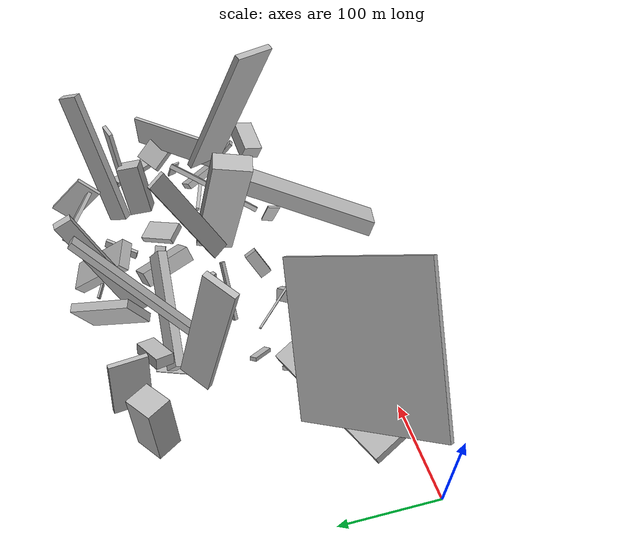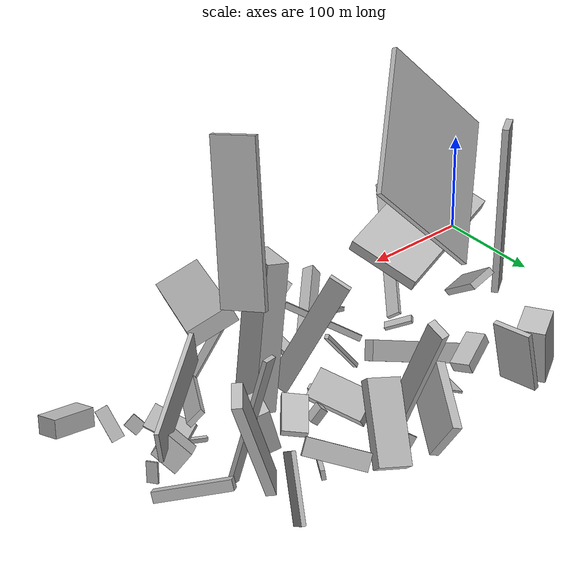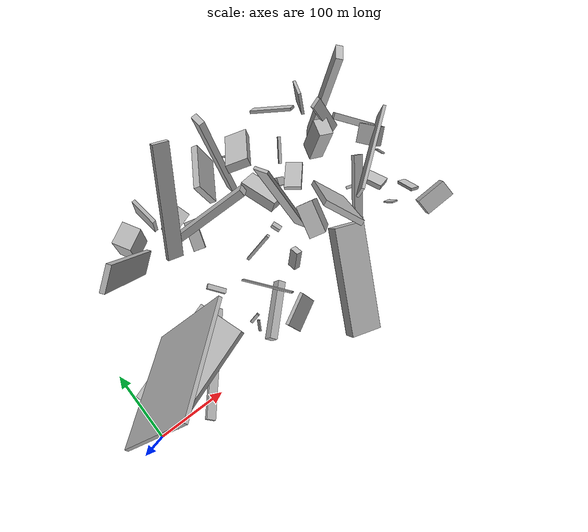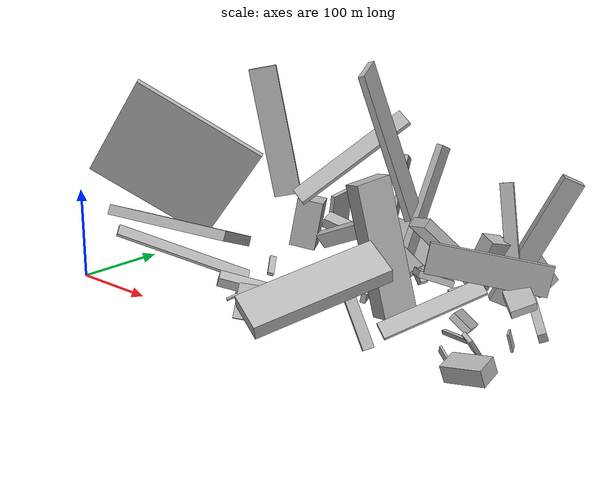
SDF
<sdf version="1.6">
 <world name="default">
  <model name="building_3">
   <static>0</static>
   <pose>420.94607814986523 260.1127815754333 39.8420100999596 1.533527591717731 -0.6435940136169481 1.1607174363100758</pose>
   <link name="link">
    <gravity>0</gravity>
    <pose>0 0 2.0 0 0 0</pose>
    <collision name="collision"><geometry><box><size>28 61 4</size></box></geometry></collision>
    <visual name="visual">
     <cast_shadows>0</cast_shadows>
     <geometry><box><size>28 61 4</size></box></geometry>
     <material>
      <script>
       <uri>model://HANNAS_wall/materials/scripts</uri>
       <uri>model://HANNAS_wall/materials/textures</uri>
       <name>vrc/HANNAS_wall</name>
      </script>
     </material>
    </visual>
   </link>
  </model>
  <model name="building_6">
   <static>0</static>
   <pose>425.18389464368346 209.73645368273364 79.07927625135693 -0.7447193316424433 -1.3110439471025137 2.6268984074315966</pose>
   <link name="link">
    <gravity>0</gravity>
    <pose>0 0 2.0 0 0 0</pose>
    <collision name="collision"><geometry><box><size>124 14 4</size></box></geometry></collision>
    <visual name="visual">
     <cast_shadows>0</cast_shadows>
     <geometry><box><size>124 14 4</size></box></geometry>
     <material>
      <script>
       <uri>model://HANNAS_wall/materials/scripts</uri>
       <uri>model://HANNAS_wall/materials/textures</uri>
       <name>vrc/HANNAS_wall</name>
      </script>
     </material>
    </visual>
   </link>
  </model>
  <model name="building_9">
   <static>0</static>
   <pose>445.43260659078487 115.34296753509653 21.501391600132397 -0.3782642870587516 -0.850306131800718 0.7064850342172253</pose>
   <link name="link">
    <gravity>0</gravity>
    <pose>0 0 11.0 0 0 0</pose>
    <collision name="collision"><geometry><box><size>7 40 22</size></box></geometry></collision>
    <visual name="visual">
     <cast_shadows>0</cast_shadows>
     <geometry><box><size>7 40 22</size></box></geometry>
     <material>
      <script>
       <uri>model://HANNAS_wall/materials/scripts</uri>
       <uri>model://HANNAS_wall/materials/textures</uri>
       <name>vrc/HANNAS_wall</name>
      </script>
     </material>
    </visual>
   </link>
  </model>
  <model name="building_10">
   <static>0</static>
   <pose>331.610137652745 93.44440369719452 77.77424442970286 0.8828996320521553 -1.3547485997910766 -2.6844283307773633</pose>
   <link name="link">
    <gravity>0</gravity>
    <pose>0 0 20.0 0 0 0</pose>
    <collision name="collision"><geometry><box><size>138 20 40</size></box></geometry></collision>
    <visual name="visual">
     <cast_shadows>0</cast_shadows>
     <geometry><box><size>138 20 40</size></box></geometry>
     <material>
      <script>
       <uri>model://HANNAS_wall/materials/scripts</uri>
       <uri>model://HANNAS_wall/materials/textures</uri>
       <name>vrc/HANNAS_wall</name>
      </script>
     </material>
    </visual>
   </link>
  </model>
  <model name="building_12">
   <static>0</static>
   <pose>165.7694307742955 78.79263799654018 60.210648897042454 1.3180628031530128 1.1829132116903107 -1.4675095553041468</pose>
   <link name="link">
    <gravity>0</gravity>
    <pose>0 0 70.5 0 0 0</pose>
    <collision name="collision"><geometry><box><size>11 69 141</size></box></geometry></collision>
    <visual name="visual">
     <cast_shadows>0</cast_shadows>
     <geometry><box><size>11 69 141</size></box></geometry>
     <material>
      <script>
       <uri>model://HANNAS_wall/materials/scripts</uri>
       <uri>model://HANNAS_wall/materials/textures</uri>
       <name>vrc/HANNAS_wall</name>
      </script>
     </material>
    </visual>
   </link>
  </model>
  <model name="building_15">
   <static>0</static>
   <pose>312.7719347964239 160.5705018023219 83.46617315777029 0.2651243395751293 -1.1004184875255292 1.7688924628607536</pose>
   <link name="link">
    <gravity>0</gravity>
    <pose>0 0 10.0 0 0 0</pose>
    <collision name="collision"><geometry><box><size>150 4 20</size></box></geometry></collision>
    <visual name="visual">
     <cast_shadows>0</cast_shadows>
     <geometry><box><size>150 4 20</size></box></geometry>
     <material>
      <script>
       <uri>model://HANNAS_wall/materials/scripts</uri>
       <uri>model://HANNAS_wall/materials/textures</uri>
       <name>vrc/HANNAS_wall</name>
      </script>
     </material>
    </visual>
   </link>
  </model>
  <model name="building_16">
   <static>0</static>
   <pose>424.6844603839976 117.50135674631075 10.533130628331943 3.0248042556646952 -0.09545040568449047 1.2489901597829198</pose>
   <link name="link">
    <gravity>0</gravity>
    <pose>0 0 2.0 0 0 0</pose>
    <collision name="collision"><geometry><box><size>4 40 4</size></box></geometry></collision>
    <visual name="visual">
     <cast_shadows>0</cast_shadows>
     <geometry><box><size>4 40 4</size></box></geometry>
     <material>
      <script>
       <uri>model://HANNAS_wall/materials/scripts</uri>
       <uri>model://HANNAS_wall/materials/textures</uri>
       <name>vrc/HANNAS_wall</name>
      </script>
     </material>
    </visual>
   </link>
  </model>
  <model name="building_22">
   <static>0</static>
   <pose>137.21996340635576 100.89135735448768 96.95096128494049 0.9494818620397083 0.4326575226694881 -1.1258939234461234</pose>
   <link name="link">
    <gravity>0</gravity>
    <pose>0 0 75.0 0 0 0</pose>
    <collision name="collision"><geometry><box><size>5 150 150</size></box></geometry></collision>
    <visual name="visual">
     <cast_shadows>0</cast_shadows>
     <geometry><box><size>5 150 150</size></box></geometry>
     <material>
      <script>
       <uri>model://HANNAS_wall/materials/scripts</uri>
       <uri>model://HANNAS_wall/materials/textures</uri>
       <name>vrc/HANNAS_wall</name>
      </script>
     </material>
    </visual>
   </link>
  </model>
  <model name="building_24">
   <static>0</static>
   <pose>199.9052272344958 227.26171909071246 126.9411487804041 0.6526115121560769 -0.6063951936353014 0.9646820355856539</pose>
   <link name="link">
    <gravity>0</gravity>
    <pose>0 0 3.0 0 0 0</pose>
    <collision name="collision"><geometry><box><size>150 21 6</size></box></geometry></collision>
    <visual name="visual">
     <cast_shadows>0</cast_shadows>
     <geometry><box><size>150 21 6</size></box></geometry>
     <material>
      <script>
       <uri>model://HANNAS_wall/materials/scripts</uri>
       <uri>model://HANNAS_wall/materials/textures</uri>
       <name>vrc/HANNAS_wall</name>
      </script>
     </material>
    </visual>
   </link>
  </model>
  <model name="building_28">
   <static>0</static>
   <pose>301.53153260046776 181.86867619258538 29.735204999669595 0.18532840897806316 -0.662983318759284 -2.916855498178971</pose>
   <link name="link">
    <gravity>0</gravity>
    <pose>0 0 8.0 0 0 0</pose>
    <collision name="collision"><geometry><box><size>28 54 16</size></box></geometry></collision>
    <visual name="visual">
     <cast_shadows>0</cast_shadows>
     <geometry><box><size>28 54 16</size></box></geometry>
     <material>
      <script>
       <uri>model://HANNAS_wall/materials/scripts</uri>
       <uri>model://HANNAS_wall/materials/textures</uri>
       <name>vrc/HANNAS_wall</name>
      </script>
     </material>
    </visual>
   </link>
  </model>
  <model name="building_29">
   <static>0</static>
   <pose>338.2036114047082 181.82612592009673 24.830610489536795 0.7201947805005466 0.07658988869370915 -1.8967467343626847</pose>
   <link name="link">
    <gravity>0</gravity>
    <pose>0 0 7.5 0 0 0</pose>
    <collision name="collision"><geometry><box><size>11 8 15</size></box></geometry></collision>
    <visual name="visual">
     <cast_shadows>0</cast_shadows>
     <geometry><box><size>11 8 15</size></box></geometry>
     <material>
      <script>
       <uri>model://HANNAS_wall/materials/scripts</uri>
       <uri>model://HANNAS_wall/materials/textures</uri>
       <name>vrc/HANNAS_wall</name>
      </script>
     </material>
    </visual>
   </link>
  </model>
  <model name="building_31">
   <static>0</static>
   <pose>334.87711655066107 14.788009470166376 68.68643270497077 2.851370163803721 -0.42218061696903864 2.8121413530324255</pose>
   <link name="link">
    <gravity>0</gravity>
    <pose>0 0 8.0 0 0 0</pose>
    <collision name="collision"><geometry><box><size>44 143 16</size></box></geometry></collision>
    <visual name="visual">
     <cast_shadows>0</cast_shadows>
     <geometry><box><size>44 143 16</size></box></geometry>
     <material>
      <script>
       <uri>model://HANNAS_wall/materials/scripts</uri>
       <uri>model://HANNAS_wall/materials/textures</uri>
       <name>vrc/HANNAS_wall</name>
      </script>
     </material>
    </visual>
   </link>
  </model>
  <model name="building_33">
   <static>0</static>
   <pose>362.4078529921752 170.2658046078094 37.236047887932166 1.7301954655400793 -0.3510187998671166 -2.279040043163953</pose>
   <link name="link">
    <gravity>0</gravity>
    <pose>0 0 11.5 0 0 0</pose>
    <collision name="collision"><geometry><box><size>39 7 23</size></box></geometry></collision>
    <visual name="visual">
     <cast_shadows>0</cast_shadows>
     <geometry><box><size>39 7 23</size></box></geometry>
     <material>
      <script>
       <uri>model://HANNAS_wall/materials/scripts</uri>
       <uri>model://HANNAS_wall/materials/textures</uri>
       <name>vrc/HANNAS_wall</name>
      </script>
     </material>
    </visual>
   </link>
  </model>
  <model name="building_45">
   <static>0</static>
   <pose>311.39756330672935 243.1435573272389 41.89936518291971 0.27945418709858466 -0.7817726247774739 -2.099672538147056</pose>
   <link name="link">
    <gravity>0</gravity>
    <pose>0 0 6.0 0 0 0</pose>
    <collision name="collision"><geometry><box><size>76 31 12</size></box></geometry></collision>
    <visual name="visual">
     <cast_shadows>0</cast_shadows>
     <geometry><box><size>76 31 12</size></box></geometry>
     <material>
      <script>
       <uri>model://HANNAS_wall/materials/scripts</uri>
       <uri>model://HANNAS_wall/materials/textures</uri>
       <name>vrc/HANNAS_wall</name>
      </script>
     </material>
    </visual>
   </link>
  </model>
  <model name="building_46">
   <static>0</static>
   <pose>472.34040938059667 39.89302498321749 16.53469781019052 1.3953370975488293 -0.25349371672211796 1.665510111453216</pose>
   <link name="link">
    <gravity>0</gravity>
    <pose>0 0 21.0 0 0 0</pose>
    <collision name="collision"><geometry><box><size>23 17 42</size></box></geometry></collision>
    <visual name="visual">
     <cast_shadows>0</cast_shadows>
     <geometry><box><size>23 17 42</size></box></geometry>
     <material>
      <script>
       <uri>model://HANNAS_wall/materials/scripts</uri>
       <uri>model://HANNAS_wall/materials/textures</uri>
       <name>vrc/HANNAS_wall</name>
      </script>
     </material>
    </visual>
   </link>
  </model>
  <model name="building_49">
   <static>0</static>
   <pose>407.3927169293918 102.85648008044618 37.097169434354186 2.685153396075238 -0.704578156372444 2.856440209679278</pose>
   <link name="link">
    <gravity>0</gravity>
    <pose>0 0 2.5 0 0 0</pose>
    <collision name="collision"><geometry><box><size>17 109 5</size></box></geometry></collision>
    <visual name="visual">
     <cast_shadows>0</cast_shadows>
     <geometry><box><size>17 109 5</size></box></geometry>
     <material>
      <script>
       <uri>model://HANNAS_wall/materials/scripts</uri>
       <uri>model://HANNAS_wall/materials/textures</uri>
       <name>vrc/HANNAS_wall</name>
      </script>
     </material>
    </visual>
   </link>
  </model>
  <model name="building_57">
   <static>0</static>
   <pose>297.3421806104428 131.80509754937646 10.710543558785393 1.4596949716810643 -0.23183894567077598 -2.7416501825292756</pose>
   <link name="link">
    <gravity>0</gravity>
    <pose>0 0 6.5 0 0 0</pose>
    <collision name="collision"><geometry><box><size>6 11 13</size></box></geometry></collision>
    <visual name="visual">
     <cast_shadows>0</cast_shadows>
     <geometry><box><size>6 11 13</size></box></geometry>
     <material>
      <script>
       <uri>model://HANNAS_wall/materials/scripts</uri>
       <uri>model://HANNAS_wall/materials/textures</uri>
       <name>vrc/HANNAS_wall</name>
      </script>
     </material>
    </visual>
   </link>
  </model>
  <model name="building_60">
   <static>0</static>
   <pose>471.3736044733044 85.56573062009826 15.087416893283951 0.6635283891658516 0.36113583488974227 -0.3124146970888122</pose>
   <link name="link">
    <gravity>0</gravity>
    <pose>0 0 15.0 0 0 0</pose>
    <collision name="collision"><geometry><box><size>12 4 30</size></box></geometry></collision>
    <visual name="visual">
     <cast_shadows>0</cast_shadows>
     <geometry><box><size>12 4 30</size></box></geometry>
     <material>
      <script>
       <uri>model://HANNAS_wall/materials/scripts</uri>
       <uri>model://HANNAS_wall/materials/textures</uri>
       <name>vrc/HANNAS_wall</name>
      </script>
     </material>
    </visual>
   </link>
  </model>
  <model name="building_61">
   <static>0</static>
   <pose>197.72634008904322 54.88276212324006 11.811310811559455 0.17302855116467286 -0.3605078757301616 0.20998635471627788</pose>
   <link name="link">
    <gravity>0</gravity>
    <pose>0 0 2.0 0 0 0</pose>
    <collision name="collision"><geometry><box><size>15 4 4</size></box></geometry></collision>
    <visual name="visual">
     <cast_shadows>0</cast_shadows>
     <geometry><box><size>15 4 4</size></box></geometry>
     <material>
      <script>
       <uri>model://HANNAS_wall/materials/scripts</uri>
       <uri>model://HANNAS_wall/materials/textures</uri>
       <name>vrc/HANNAS_wall</name>
      </script>
     </material>
    </visual>
   </link>
  </model>
  <model name="building_65">
   <static>0</static>
   <pose>363.66978561794576 124.71787233094415 119.49635064414747 0.18732641418825172 -0.2750737908505673 0.41745687337188275</pose>
   <link name="link">
    <gravity>0</gravity>
    <pose>0 0 75.0 0 0 0</pose>
    <collision name="collision"><geometry><box><size>6 42 150</size></box></geometry></collision>
    <visual name="visual">
     <cast_shadows>0</cast_shadows>
     <geometry><box><size>6 42 150</size></box></geometry>
     <material>
      <script>
       <uri>model://HANNAS_wall/materials/scripts</uri>
       <uri>model://HANNAS_wall/materials/textures</uri>
       <name>vrc/HANNAS_wall</name>
      </script>
     </material>
    </visual>
   </link>
  </model>
  <model name="building_66">
   <static>0</static>
   <pose>130.99200724072716 223.94469082857685 35.920538909771686 1.566359889652618 -0.186672583721242 -2.596067929572076</pose>
   <link name="link">
    <gravity>0</gravity>
    <pose>0 0 13.0 0 0 0</pose>
    <collision name="collision"><geometry><box><size>31 59 26</size></box></geometry></collision>
    <visual name="visual">
     <cast_shadows>0</cast_shadows>
     <geometry><box><size>31 59 26</size></box></geometry>
     <material>
      <script>
       <uri>model://HANNAS_wall/materials/scripts</uri>
       <uri>model://HANNAS_wall/materials/textures</uri>
       <name>vrc/HANNAS_wall</name>
      </script>
     </material>
    </visual>
   </link>
  </model>
  <model name="building_68">
   <static>0</static>
   <pose>132.36002529619157 192.21474037690226 79.83747048862682 -0.18618379834541562 -0.0009575086480945377 2.2409310775673466</pose>
   <link name="link">
    <gravity>0</gravity>
    <pose>0 0 75.0 0 0 0</pose>
    <collision name="collision"><geometry><box><size>6 31 150</size></box></geometry></collision>
    <visual name="visual">
     <cast_shadows>0</cast_shadows>
     <geometry><box><size>6 31 150</size></box></geometry>
     <material>
      <script>
       <uri>model://HANNAS_wall/materials/scripts</uri>
       <uri>model://HANNAS_wall/materials/textures</uri>
       <name>vrc/HANNAS_wall</name>
      </script>
     </material>
    </visual>
   </link>
  </model>
  <model name="building_70">
   <static>0</static>
   <pose>271.2309128674822 35.56702903592868 21.670190131776092 -1.431889999632938 -1.0156339978620255 1.9551152106547185</pose>
   <link name="link">
    <gravity>0</gravity>
    <pose>0 0 23.0 0 0 0</pose>
    <collision name="collision"><geometry><box><size>36 5 46</size></box></geometry></collision>
    <visual name="visual">
     <cast_shadows>0</cast_shadows>
     <geometry><box><size>36 5 46</size></box></geometry>
     <material>
      <script>
       <uri>model://HANNAS_wall/materials/scripts</uri>
       <uri>model://HANNAS_wall/materials/textures</uri>
       <name>vrc/HANNAS_wall</name>
      </script>
     </material>
    </visual>
   </link>
  </model>
  <model name="building_72">
   <static>0</static>
   <pose>282.1425946786053 256.8502933130008 74.10103031795215 0.20057346445343346 -1.137254127617539 1.4277439448821312</pose>
   <link name="link">
    <gravity>0</gravity>
    <pose>0 0 9.0 0 0 0</pose>
    <collision name="collision"><geometry><box><size>150 8 18</size></box></geometry></collision>
    <visual name="visual">
     <cast_shadows>0</cast_shadows>
     <geometry><box><size>150 8 18</size></box></geometry>
     <material>
      <script>
       <uri>model://HANNAS_wall/materials/scripts</uri>
       <uri>model://HANNAS_wall/materials/textures</uri>
       <name>vrc/HANNAS_wall</name>
      </script>
     </material>
    </visual>
   </link>
  </model>
  <model name="building_75">
   <static>0</static>
   <pose>178.11537149557103 117.10499241894999 21.31158583333841 0.33451323350801965 -0.4229480524214739 2.2319914269267005</pose>
   <link name="link">
    <gravity>0</gravity>
    <pose>0 0 2.0 0 0 0</pose>
    <collision name="collision"><geometry><box><size>27 7 4</size></box></geometry></collision>
    <visual name="visual">
     <cast_shadows>0</cast_shadows>
     <geometry><box><size>27 7 4</size></box></geometry>
     <material>
      <script>
       <uri>model://HANNAS_wall/materials/scripts</uri>
       <uri>model://HANNAS_wall/materials/textures</uri>
       <name>vrc/HANNAS_wall</name>
      </script>
     </material>
    </visual>
   </link>
  </model>
  <model name="building_80">
   <static>0</static>
   <pose>372.6041499995274 236.8039824002693 15.55378829828282 1.7659830259738687 0.13308532741557655 -0.5637382911734511</pose>
   <link name="link">
    <gravity>0</gravity>
    <pose>0 0 18.5 0 0 0</pose>
    <collision name="collision"><geometry><box><size>4 9 37</size></box></geometry></collision>
    <visual name="visual">
     <cast_shadows>0</cast_shadows>
     <geometry><box><size>4 9 37</size></box></geometry>
     <material>
      <script>
       <uri>model://HANNAS_wall/materials/scripts</uri>
       <uri>model://HANNAS_wall/materials/textures</uri>
       <name>vrc/HANNAS_wall</name>
      </script>
     </material>
    </visual>
   </link>
  </model>
  <model name="building_82">
   <static>0</static>
   <pose>289.81705696104086 81.17236666611838 32.31120347654371 -2.331124700514804 -0.8193681155731473 0.7890446384309755</pose>
   <link name="link">
    <gravity>0</gravity>
    <pose>0 0 6.5 0 0 0</pose>
    <collision name="collision"><geometry><box><size>29 9 13</size></box></geometry></collision>
    <visual name="visual">
     <cast_shadows>0</cast_shadows>
     <geometry><box><size>29 9 13</size></box></geometry>
     <material>
      <script>
       <uri>model://HANNAS_wall/materials/scripts</uri>
       <uri>model://HANNAS_wall/materials/textures</uri>
       <name>vrc/HANNAS_wall</name>
      </script>
     </material>
    </visual>
   </link>
  </model>
  <model name="building_83">
   <static>0</static>
   <pose>395.3496469631721 189.48430048133156 34.098031935026576 0.2995405774979433 0.2557105146407037 1.2889898218066649</pose>
   <link name="link">
    <gravity>0</gravity>
    <pose>0 0 27.5 0 0 0</pose>
    <collision name="collision"><geometry><box><size>24 19 55</size></box></geometry></collision>
    <visual name="visual">
     <cast_shadows>0</cast_shadows>
     <geometry><box><size>24 19 55</size></box></geometry>
     <material>
      <script>
       <uri>model://HANNAS_wall/materials/scripts</uri>
       <uri>model://HANNAS_wall/materials/textures</uri>
       <name>vrc/HANNAS_wall</name>
      </script>
     </material>
    </visual>
   </link>
  </model>
  <model name="building_84">
   <static>0</static>
   <pose>124.23729328542301 40.18029710771225 45.108160155485905 2.6370424497698037 0.5878555015239595 -0.9474340844068958</pose>
   <link name="link">
    <gravity>0</gravity>
    <pose>0 0 2.0 0 0 0</pose>
    <collision name="collision"><geometry><box><size>13 150 4</size></box></geometry></collision>
    <visual name="visual">
     <cast_shadows>0</cast_shadows>
     <geometry><box><size>13 150 4</size></box></geometry>
     <material>
      <script>
       <uri>model://HANNAS_wall/materials/scripts</uri>
       <uri>model://HANNAS_wall/materials/textures</uri>
       <name>vrc/HANNAS_wall</name>
      </script>
     </material>
    </visual>
   </link>
  </model>
  <model name="building_86">
   <static>0</static>
   <pose>256.41580626919165 129.42878547802567 32.705676288039726 1.9176785914227064 -0.915418228511623 0.10843186354367944</pose>
   <link name="link">
    <gravity>0</gravity>
    <pose>0 0 2.0 0 0 0</pose>
    <collision name="collision"><geometry><box><size>63 4 4</size></box></geometry></collision>
    <visual name="visual">
     <cast_shadows>0</cast_shadows>
     <geometry><box><size>63 4 4</size></box></geometry>
     <material>
      <script>
       <uri>model://HANNAS_wall/materials/scripts</uri>
       <uri>model://HANNAS_wall/materials/textures</uri>
       <name>vrc/HANNAS_wall</name>
      </script>
     </material>
    </visual>
   </link>
  </model>
  <model name="building_87">
   <static>0</static>
   <pose>231.45055985048796 193.11529788467107 54.018008099867714 -1.1097898913725643 -0.4109266050710443 -0.07764631314791703</pose>
   <link name="link">
    <gravity>0</gravity>
    <pose>0 0 5.0 0 0 0</pose>
    <collision name="collision"><geometry><box><size>117 18 10</size></box></geometry></collision>
    <visual name="visual">
     <cast_shadows>0</cast_shadows>
     <geometry><box><size>117 18 10</size></box></geometry>
     <material>
      <script>
       <uri>model://HANNAS_wall/materials/scripts</uri>
       <uri>model://HANNAS_wall/materials/textures</uri>
       <name>vrc/HANNAS_wall</name>
      </script>
     </material>
    </visual>
   </link>
  </model>
  <model name="building_88">
   <static>0</static>
   <pose>445.64718784558613 138.7392388108753 76.29917300217241 1.8608739351352706 -1.3821792025103337 0.36155458472620566</pose>
   <link name="link">
    <gravity>0</gravity>
    <pose>0 0 2.0 0 0 0</pose>
    <collision name="collision"><geometry><box><size>32 119 4</size></box></geometry></collision>
    <visual name="visual">
     <cast_shadows>0</cast_shadows>
     <geometry><box><size>32 119 4</size></box></geometry>
     <material>
      <script>
       <uri>model://HANNAS_wall/materials/scripts</uri>
       <uri>model://HANNAS_wall/materials/textures</uri>
       <name>vrc/HANNAS_wall</name>
      </script>
     </material>
    </visual>
   </link>
  </model>
  <model name="building_90">
   <static>0</static>
   <pose>252.99321115076162 252.0266885678867 35.94722966042998 0.8636924829070604 -1.0375570867826212 1.8443578243213352</pose>
   <link name="link">
    <gravity>0</gravity>
    <pose>0 0 4.5 0 0 0</pose>
    <collision name="collision"><geometry><box><size>43 67 9</size></box></geometry></collision>
    <visual name="visual">
     <cast_shadows>0</cast_shadows>
     <geometry><box><size>43 67 9</size></box></geometry>
     <material>
      <script>
       <uri>model://HANNAS_wall/materials/scripts</uri>
       <uri>model://HANNAS_wall/materials/textures</uri>
       <name>vrc/HANNAS_wall</name>
      </script>
     </material>
    </visual>
   </link>
  </model>
  <model name="building_95">
   <static>0</static>
   <pose>436.509852375504 232.91287388443783 80.06751295229485 1.919146748911374 -1.1008033739225318 0.49053631154265354</pose>
   <link name="link">
    <gravity>0</gravity>
    <pose>0 0 4.5 0 0 0</pose>
    <collision name="collision"><geometry><box><size>150 23 9</size></box></geometry></collision>
    <visual name="visual">
     <cast_shadows>0</cast_shadows>
     <geometry><box><size>150 23 9</size></box></geometry>
     <material>
      <script>
       <uri>model://HANNAS_wall/materials/scripts</uri>
       <uri>model://HANNAS_wall/materials/textures</uri>
       <name>vrc/HANNAS_wall</name>
      </script>
     </material>
    </visual>
   </link>
  </model>
  <model name="building_97">
   <static>0</static>
   <pose>359.63927050871087 279.56763921110223 46.77027334105933 -1.188130365167432 0.5291717461182374 -2.0455427015018195</pose>
   <link name="link">
    <gravity>0</gravity>
    <pose>0 0 28.5 0 0 0</pose>
    <collision name="collision"><geometry><box><size>4 16 57</size></box></geometry></collision>
    <visual name="visual">
     <cast_shadows>0</cast_shadows>
     <geometry><box><size>4 16 57</size></box></geometry>
     <material>
      <script>
       <uri>model://HANNAS_wall/materials/scripts</uri>
       <uri>model://HANNAS_wall/materials/textures</uri>
       <name>vrc/HANNAS_wall</name>
      </script>
     </material>
    </visual>
   </link>
  </model>
  <model name="building_102">
   <static>0</static>
   <pose>187.26533650825803 219.26444783756222 43.036558961367014 -0.22229710289167287 -0.33690445267146635 -2.751974086872939</pose>
   <link name="link">
    <gravity>0</gravity>
    <pose>0 0 5.5 0 0 0</pose>
    <collision name="collision"><geometry><box><size>36 19 11</size></box></geometry></collision>
    <visual name="visual">
     <cast_shadows>0</cast_shadows>
     <geometry><box><size>36 19 11</size></box></geometry>
     <material>
      <script>
       <uri>model://HANNAS_wall/materials/scripts</uri>
       <uri>model://HANNAS_wall/materials/textures</uri>
       <name>vrc/HANNAS_wall</name>
      </script>
     </material>
    </visual>
   </link>
  </model>
  <model name="building_105">
   <static>0</static>
   <pose>196.75679269512815 42.797230354951665 11.612876419053395 0.4936256175249445 -0.8373137915924715 -0.8885951685100285</pose>
   <link name="link">
    <gravity>0</gravity>
    <pose>0 0 1.0 0 0 0</pose>
    <collision name="collision"><geometry><box><size>4 16 2</size></box></geometry></collision>
    <visual name="visual">
     <cast_shadows>0</cast_shadows>
     <geometry><box><size>4 16 2</size></box></geometry>
     <material>
      <script>
       <uri>model://HANNAS_wall/materials/scripts</uri>
       <uri>model://HANNAS_wall/materials/textures</uri>
       <name>vrc/HANNAS_wall</name>
      </script>
     </material>
    </visual>
   </link>
  </model>
  <model name="building_111">
   <static>0</static>
   <pose>353.34612338935494 59.89397369661388 34.00901118220031 -1.6760825942004494 -0.9786570489104418 2.959313223524505</pose>
   <link name="link">
    <gravity>0</gravity>
    <pose>0 0 6.5 0 0 0</pose>
    <collision name="collision"><geometry><box><size>77 2 13</size></box></geometry></collision>
    <visual name="visual">
     <cast_shadows>0</cast_shadows>
     <geometry><box><size>77 2 13</size></box></geometry>
     <material>
      <script>
       <uri>model://HANNAS_wall/materials/scripts</uri>
       <uri>model://HANNAS_wall/materials/textures</uri>
       <name>vrc/HANNAS_wall</name>
      </script>
     </material>
    </visual>
   </link>
  </model>
  <model name="building_113">
   <static>0</static>
   <pose>206.02570784016342 192.8465202205446 13.463388485817426 -2.9000612379230253 1.1654944595505161 -0.07229982813863564</pose>
   <link name="link">
    <gravity>0</gravity>
    <pose>0 0 9.5 0 0 0</pose>
    <collision name="collision"><geometry><box><size>2 42 19</size></box></geometry></collision>
    <visual name="visual">
     <cast_shadows>0</cast_shadows>
     <geometry><box><size>2 42 19</size></box></geometry>
     <material>
      <script>
       <uri>model://HANNAS_wall/materials/scripts</uri>
       <uri>model://HANNAS_wall/materials/textures</uri>
       <name>vrc/HANNAS_wall</name>
      </script>
     </material>
    </visual>
   </link>
  </model>
  <model name="building_115">
   <static>0</static>
   <pose>470.99747146341434 189.88950295047078 16.38538943541639 0.3231593126619722 0.2763814409742165 -0.8233935578064939</pose>
   <link name="link">
    <gravity>0</gravity>
    <pose>0 0 5.0 0 0 0</pose>
    <collision name="collision"><geometry><box><size>70 9 10</size></box></geometry></collision>
    <visual name="visual">
     <cast_shadows>0</cast_shadows>
     <geometry><box><size>70 9 10</size></box></geometry>
     <material>
      <script>
       <uri>model://HANNAS_wall/materials/scripts</uri>
       <uri>model://HANNAS_wall/materials/textures</uri>
       <name>vrc/HANNAS_wall</name>
      </script>
     </material>
    </visual>
   </link>
  </model>
  <model name="building_117">
   <static>0</static>
   <pose>463.38793058831806 168.9174263993691 36.90412565881354 -0.5590846717755302 -0.8306439549406454 2.767828663060191</pose>
   <link name="link">
    <gravity>0</gravity>
    <pose>0 0 13.0 0 0 0</pose>
    <collision name="collision"><geometry><box><size>22 26 26</size></box></geometry></collision>
    <visual name="visual">
     <cast_shadows>0</cast_shadows>
     <geometry><box><size>22 26 26</size></box></geometry>
     <material>
      <script>
       <uri>model://HANNAS_wall/materials/scripts</uri>
       <uri>model://HANNAS_wall/materials/textures</uri>
       <name>vrc/HANNAS_wall</name>
      </script>
     </material>
    </visual>
   </link>
  </model>
  <model name="building_118">
   <static>0</static>
   <pose>475.3502466850432 137.41021821064936 11.699002128420378 2.586317876598339 -1.2947643307015864 -2.16710324008337</pose>
   <link name="link">
    <gravity>0</gravity>
    <pose>0 0 1.0 0 0 0</pose>
    <collision name="collision"><geometry><box><size>19 11 2</size></box></geometry></collision>
    <visual name="visual">
     <cast_shadows>0</cast_shadows>
     <geometry><box><size>19 11 2</size></box></geometry>
     <material>
      <script>
       <uri>model://HANNAS_wall/materials/scripts</uri>
       <uri>model://HANNAS_wall/materials/textures</uri>
       <name>vrc/HANNAS_wall</name>
      </script>
     </material>
    </visual>
   </link>
  </model>
  <model name="building_121">
   <static>0</static>
   <pose>235.8118572245622 78.25311534205558 29.569339506284713 -1.302850198657156 -0.3828095835753107 -0.8925121988496442</pose>
   <link name="link">
    <gravity>0</gravity>
    <pose>0 0 1.0 0 0 0</pose>
    <collision name="collision"><geometry><box><size>75 6 2</size></box></geometry></collision>
    <visual name="visual">
     <cast_shadows>0</cast_shadows>
     <geometry><box><size>75 6 2</size></box></geometry>
     <material>
      <script>
       <uri>model://HANNAS_wall/materials/scripts</uri>
       <uri>model://HANNAS_wall/materials/textures</uri>
       <name>vrc/HANNAS_wall</name>
      </script>
     </material>
    </visual>
   </link>
  </model>
  <model name="building_123">
   <static>0</static>
   <pose>295.1938930242625 258.1169403584535 17.310984519942927 0.9882034129253735 -0.2112914260845739 1.128218607116353</pose>
   <link name="link">
    <gravity>0</gravity>
    <pose>0 0 8.0 0 0 0</pose>
    <collision name="collision"><geometry><box><size>2 24 16</size></box></geometry></collision>
    <visual name="visual">
     <cast_shadows>0</cast_shadows>
     <geometry><box><size>2 24 16</size></box></geometry>
     <material>
      <script>
       <uri>model://HANNAS_wall/materials/scripts</uri>
       <uri>model://HANNAS_wall/materials/textures</uri>
       <name>vrc/HANNAS_wall</name>
      </script>
     </material>
    </visual>
   </link>
  </model>
  <model name="building_127">
   <static>0</static>
   <pose>159.28560095465537 266.95491891812725 48.93971573753435 1.887908851932905 -1.3976237632545858 -0.17343791130126798</pose>
   <link name="link">
    <gravity>0</gravity>
    <pose>0 0 19.0 0 0 0</pose>
    <collision name="collision"><geometry><box><size>60 5 38</size></box></geometry></collision>
    <visual name="visual">
     <cast_shadows>0</cast_shadows>
     <geometry><box><size>60 5 38</size></box></geometry>
     <material>
      <script>
       <uri>model://HANNAS_wall/materials/scripts</uri>
       <uri>model://HANNAS_wall/materials/textures</uri>
       <name>vrc/HANNAS_wall</name>
      </script>
     </material>
    </visual>
   </link>
  </model>
  <model name="building_130">
   <static>0</static>
   <pose>222.68221118146914 47.63002890944837 22.646335555234977 0.33811122461395793 -0.5035047453429389 2.1907820662182256</pose>
   <link name="link">
    <gravity>0</gravity>
    <pose>0 0 6.5 0 0 0</pose>
    <collision name="collision"><geometry><box><size>11 80 13</size></box></geometry></collision>
    <visual name="visual">
     <cast_shadows>0</cast_shadows>
     <geometry><box><size>11 80 13</size></box></geometry>
     <material>
      <script>
       <uri>model://HANNAS_wall/materials/scripts</uri>
       <uri>model://HANNAS_wall/materials/textures</uri>
       <name>vrc/HANNAS_wall</name>
      </script>
     </material>
    </visual>
   </link>
  </model>
  <model name="building_136">
   <static>0</static>
   <pose>447.0858594300506 68.16254279709817 14.705145619812594 -2.6634779904316694 0.7030441076558006 -0.19642377954173523</pose>
   <link name="link">
    <gravity>0</gravity>
    <pose>0 0 7.0 0 0 0</pose>
    <collision name="collision"><geometry><box><size>13 2 14</size></box></geometry></collision>
    <visual name="visual">
     <cast_shadows>0</cast_shadows>
     <geometry><box><size>13 2 14</size></box></geometry>
     <material>
      <script>
       <uri>model://HANNAS_wall/materials/scripts</uri>
       <uri>model://HANNAS_wall/materials/textures</uri>
       <name>vrc/HANNAS_wall</name>
      </script>
     </material>
    </visual>
   </link>
  </model>
 </world>
</sdf>
